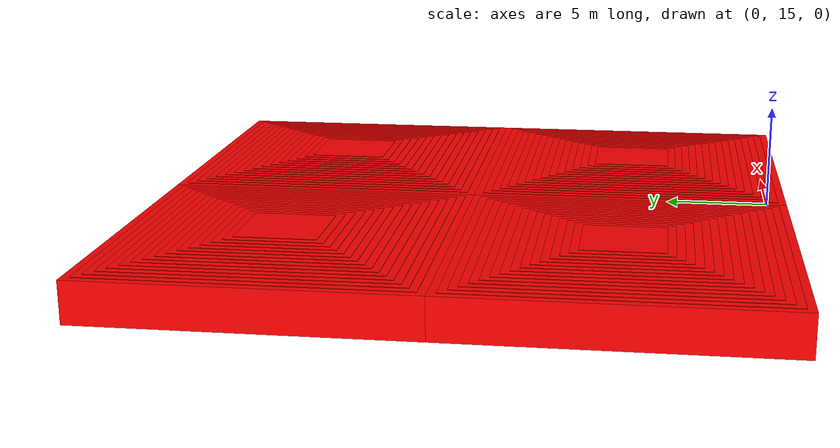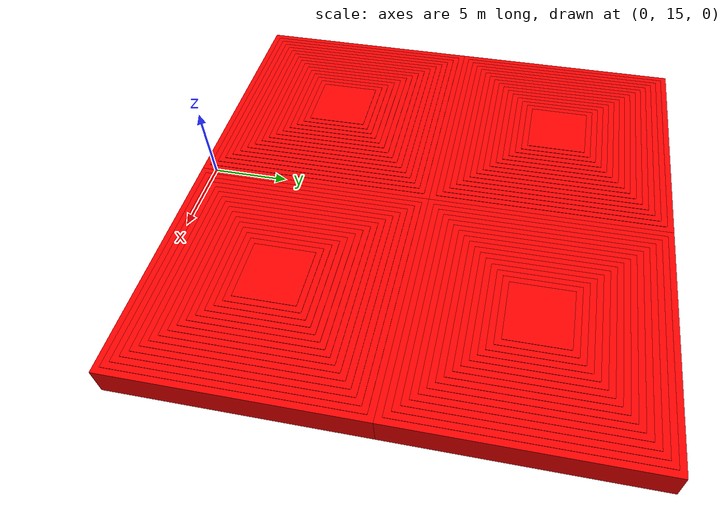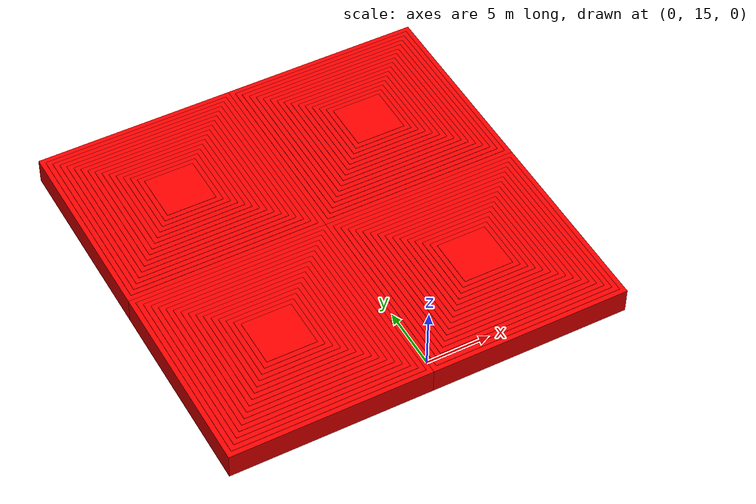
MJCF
<mujoco model="random_box_terrain">
    <compiler angle="degree" coordinate="local"/>
    <option timestep="0.01" gravity="0 0 -9.81" integrator="RK4"/>

    <asset>
        <texture type="2d" name="Plastic006_color"      file="../../textures/Plastic006_2K-PNG/Plastic006_2K-PNG_Color.png"/>
        <texture type="2d" name="Plastic006_roughness"  file="../../textures/Plastic006_2K-PNG/Plastic006_2K-PNG_Roughness.png"/>
        <texture type="2d" name="Plastic006_normal"     file="../../textures/Plastic006_2K-PNG/Plastic006_2K-PNG_NormalDX.png"/>

        <material name="pbr_plastic_black" metallic ="0.05" roughness="1.0" rgba="1 0 0 1.0">
        <layer role="rgb"        texture="Plastic006_color"/>
        <layer role="normal"     texture="Plastic006_normal"/>
        <layer role="roughness"  texture="Plastic006_roughness"/>
        </material>

        <texture type="2d" name="Plastic013A_color"      file="../../textures/Plastic013A_2K-PNG/Plastic013A_2K-PNG_Color.png"/>
        <texture type="2d" name="Plastic013A_roughness"  file="../../textures/Plastic013A_2K-PNG/Plastic013A_2K-PNG_Roughness.png"/>
        <texture type="2d" name="Plastic013A_normal"     file="../../textures/Plastic013A_2K-PNG/Plastic013A_2K-PNG_NormalDX.png"/>

        <material name="pbr_plastic_white" metallic ="0.05" roughness="1.0" rgba="1 0 0 1.0">
        <layer role="rgb"        texture="Plastic013A_color"/>
        <layer role="normal"     texture="Plastic013A_normal"/>
        <layer role="roughness"  texture="Plastic013A_roughness"/>
        </material>

        <texture type="2d" name="Plastic010_color"      file="../../textures/Plastic010_2K-PNG/Plastic010_2K-PNG_Color.png"/>
        <texture type="2d" name="Plastic010_roughness"  file="../../textures/Plastic010_2K-PNG/Plastic010_2K-PNG_Roughness.png"/>
        <texture type="2d" name="Plastic010_normal"     file="../../textures/Plastic010_2K-PNG/Plastic010_2K-PNG_NormalDX.png"/>

        <material name="pbr_plastic_gray" metallic ="0.05" roughness="1.0" rgba="1 0 0 1.0">
        <layer role="rgb"        texture="Plastic010_color"/>
        <layer role="normal"     texture="Plastic010_normal"/>
        <layer role="roughness"  texture="Plastic010_roughness"/>
        </material>
    </asset>
    <worldbody>
        <body name="offset" pos="0.0 30.0 0.0">
            <body name="terrain" pos="0 0 0.0">

                <geom type="box" pos="-8.0 -8.0 -1.0" size="8.0 8.0  1.025"   material="pbr_plastic_gray"/>
                <geom type="box" pos="-8.0 -8.0 -1.0" size="7.6 7.6  1.050"   material="pbr_plastic_white"/>
                <geom type="box" pos="-8.0 -8.0 -1.0" size="7.2 7.2  1.075"   material="pbr_plastic_gray"/>
                <geom type="box" pos="-8.0 -8.0 -1.0" size="6.8 6.8  1.100"   material="pbr_plastic_white"/>
                <geom type="box" pos="-8.0 -8.0 -1.0" size="6.4 6.4  1.125"   material="pbr_plastic_gray"/>
                <geom type="box" pos="-8.0 -8.0 -1.0" size="6.0 6.0  1.150"   material="pbr_plastic_white"/>
                <geom type="box" pos="-8.0 -8.0 -1.0" size="5.6 5.6  1.175"   material="pbr_plastic_gray"/>
                <geom type="box" pos="-8.0 -8.0 -1.0" size="5.2 5.2  1.200"   material="pbr_plastic_white"/>
                <geom type="box" pos="-8.0 -8.0 -1.0" size="4.8 4.8  1.225"   material="pbr_plastic_gray"/>
                <geom type="box" pos="-8.0 -8.0 -1.0" size="4.4 4.4  1.250"   material="pbr_plastic_white"/>
                <geom type="box" pos="-8.0 -8.0 -1.0" size="4.0 4.0  1.275"   material="pbr_plastic_gray"/>
                <geom type="box" pos="-8.0 -8.0 -1.0" size="3.6 3.6  1.300"   material="pbr_plastic_white"/>
                <geom type="box" pos="-8.0 -8.0 -1.0" size="3.2 3.2  1.325"   material="pbr_plastic_gray"/>
                <geom type="box" pos="-8.0 -8.0 -1.0" size="2.8 2.8  1.350"   material="pbr_plastic_white"/>
                <geom type="box" pos="-8.0 -8.0 -1.0" size="2.4 2.4  1.375"   material="pbr_plastic_gray"/>
                <geom type="box" pos="-8.0 -8.0 -1.0" size="2.0 2.0  1.400"   material="pbr_plastic_white"/>

                <geom type="box" pos="8.0 -8.0 -1.0" size="8.0 8.0  1.025"   material="pbr_plastic_gray"/>
                <geom type="box" pos="8.0 -8.0 -1.0" size="7.6 7.6  1.050"   material="pbr_plastic_white"/>
                <geom type="box" pos="8.0 -8.0 -1.0" size="7.2 7.2  1.075"   material="pbr_plastic_gray"/>
                <geom type="box" pos="8.0 -8.0 -1.0" size="6.8 6.8  1.100"   material="pbr_plastic_white"/>
                <geom type="box" pos="8.0 -8.0 -1.0" size="6.4 6.4  1.125"   material="pbr_plastic_gray"/>
                <geom type="box" pos="8.0 -8.0 -1.0" size="6.0 6.0  1.150"   material="pbr_plastic_white"/>
                <geom type="box" pos="8.0 -8.0 -1.0" size="5.6 5.6  1.175"   material="pbr_plastic_gray"/>
                <geom type="box" pos="8.0 -8.0 -1.0" size="5.2 5.2  1.200"   material="pbr_plastic_white"/>
                <geom type="box" pos="8.0 -8.0 -1.0" size="4.8 4.8  1.225"   material="pbr_plastic_gray"/>
                <geom type="box" pos="8.0 -8.0 -1.0" size="4.4 4.4  1.250"   material="pbr_plastic_white"/>
                <geom type="box" pos="8.0 -8.0 -1.0" size="4.0 4.0  1.275"   material="pbr_plastic_gray"/>
                <geom type="box" pos="8.0 -8.0 -1.0" size="3.6 3.6  1.300"   material="pbr_plastic_white"/>
                <geom type="box" pos="8.0 -8.0 -1.0" size="3.2 3.2  1.325"   material="pbr_plastic_gray"/>
                <geom type="box" pos="8.0 -8.0 -1.0" size="2.8 2.8  1.350"   material="pbr_plastic_white"/>
                <geom type="box" pos="8.0 -8.0 -1.0" size="2.4 2.4  1.375"   material="pbr_plastic_gray"/>
                <geom type="box" pos="8.0 -8.0 -1.0" size="2.0 2.0  1.400"   material="pbr_plastic_white"/>

                <geom type="box" pos="-8.0 8.0 -1.0" size="8.0 8.0  1.025"   material="pbr_plastic_gray"/>
                <geom type="box" pos="-8.0 8.0 -1.0" size="7.6 7.6  1.050"   material="pbr_plastic_white"/>
                <geom type="box" pos="-8.0 8.0 -1.0" size="7.2 7.2  1.075"   material="pbr_plastic_gray"/>
                <geom type="box" pos="-8.0 8.0 -1.0" size="6.8 6.8  1.100"   material="pbr_plastic_white"/>
                <geom type="box" pos="-8.0 8.0 -1.0" size="6.4 6.4  1.125"   material="pbr_plastic_gray"/>
                <geom type="box" pos="-8.0 8.0 -1.0" size="6.0 6.0  1.150"   material="pbr_plastic_white"/>
                <geom type="box" pos="-8.0 8.0 -1.0" size="5.6 5.6  1.175"   material="pbr_plastic_gray"/>
                <geom type="box" pos="-8.0 8.0 -1.0" size="5.2 5.2  1.200"   material="pbr_plastic_white"/>
                <geom type="box" pos="-8.0 8.0 -1.0" size="4.8 4.8  1.225"   material="pbr_plastic_gray"/>
                <geom type="box" pos="-8.0 8.0 -1.0" size="4.4 4.4  1.250"   material="pbr_plastic_white"/>
                <geom type="box" pos="-8.0 8.0 -1.0" size="4.0 4.0  1.275"   material="pbr_plastic_gray"/>
                <geom type="box" pos="-8.0 8.0 -1.0" size="3.6 3.6  1.300"   material="pbr_plastic_white"/>
                <geom type="box" pos="-8.0 8.0 -1.0" size="3.2 3.2  1.325"   material="pbr_plastic_gray"/>
                <geom type="box" pos="-8.0 8.0 -1.0" size="2.8 2.8  1.350"   material="pbr_plastic_white"/>
                <geom type="box" pos="-8.0 8.0 -1.0" size="2.4 2.4  1.375"   material="pbr_plastic_gray"/>
                <geom type="box" pos="-8.0 8.0 -1.0" size="2.0 2.0  1.400"   material="pbr_plastic_white"/>

                <geom type="box" pos="8.0 8.0 -1.0" size="8.0 8.0  1.025"   material="pbr_plastic_gray"/>
                <geom type="box" pos="8.0 8.0 -1.0" size="7.6 7.6  1.050"   material="pbr_plastic_white"/>
                <geom type="box" pos="8.0 8.0 -1.0" size="7.2 7.2  1.075"   material="pbr_plastic_gray"/>
                <geom type="box" pos="8.0 8.0 -1.0" size="6.8 6.8  1.100"   material="pbr_plastic_white"/>
                <geom type="box" pos="8.0 8.0 -1.0" size="6.4 6.4  1.125"   material="pbr_plastic_gray"/>
                <geom type="box" pos="8.0 8.0 -1.0" size="6.0 6.0  1.150"   material="pbr_plastic_white"/>
                <geom type="box" pos="8.0 8.0 -1.0" size="5.6 5.6  1.175"   material="pbr_plastic_gray"/>
                <geom type="box" pos="8.0 8.0 -1.0" size="5.2 5.2  1.200"   material="pbr_plastic_white"/>
                <geom type="box" pos="8.0 8.0 -1.0" size="4.8 4.8  1.225"   material="pbr_plastic_gray"/>
                <geom type="box" pos="8.0 8.0 -1.0" size="4.4 4.4  1.250"   material="pbr_plastic_white"/>
                <geom type="box" pos="8.0 8.0 -1.0" size="4.0 4.0  1.275"   material="pbr_plastic_gray"/>
                <geom type="box" pos="8.0 8.0 -1.0" size="3.6 3.6  1.300"   material="pbr_plastic_white"/>
                <geom type="box" pos="8.0 8.0 -1.0" size="3.2 3.2  1.325"   material="pbr_plastic_gray"/>
                <geom type="box" pos="8.0 8.0 -1.0" size="2.8 2.8  1.350"   material="pbr_plastic_white"/>
                <geom type="box" pos="8.0 8.0 -1.0" size="2.4 2.4  1.375"   material="pbr_plastic_gray"/>
                <geom type="box" pos="8.0 8.0 -1.0" size="2.0 2.0  1.400"   material="pbr_plastic_white"/>

            </body>
        </body>
    </worldbody>

    <actuator>
        <!-- 在这里你可以定义一些控制器 -->
    </actuator>

</mujoco>
